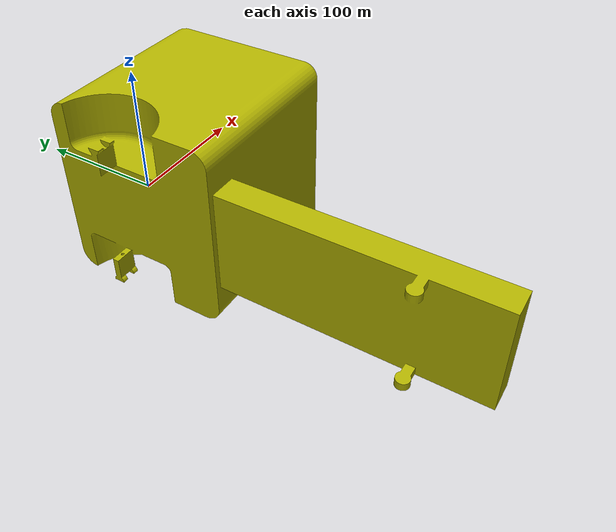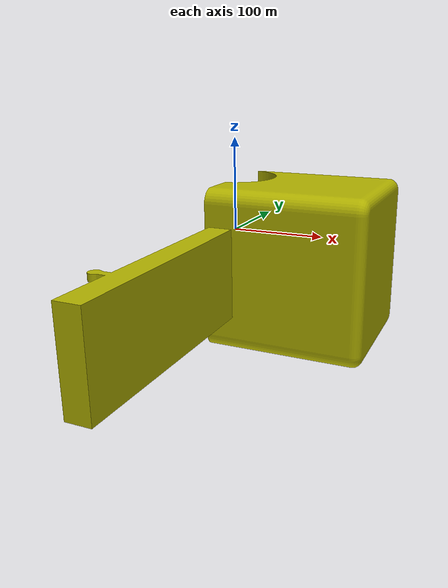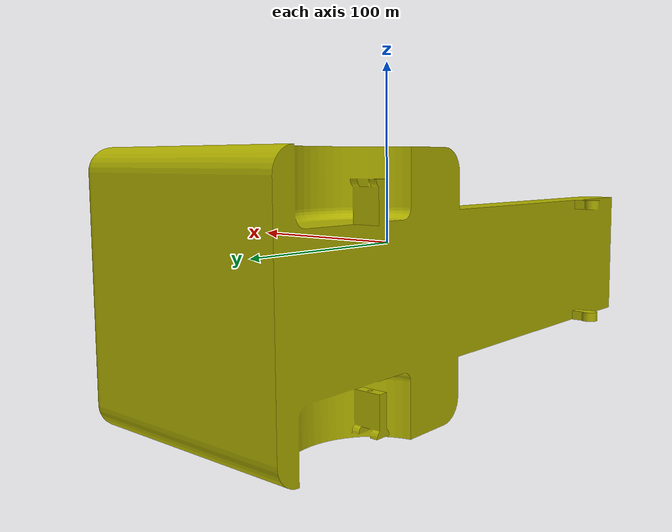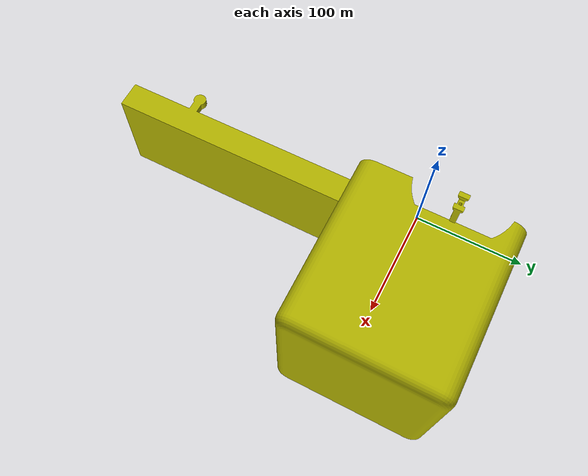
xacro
<?xml version="1.0" encoding="utf-8"?>
<robot name="tamiyabot" xmlns:xacro="http://www.ros.org/wiki/xacro">

    <!-- Load Simulated or Real Hardware Interfaces -->
    <xacro:arg name="is_sim" default="true"/>

    <xacro:include filename="$(find tamiyabot_description)/urdf/tamiyabot_gazebo.xacro"/>
    <xacro:include filename="$(find tamiyabot_description)/urdf/ros2_controller.xacro"/>

  <link name="base_footprint"/>

  <material name="yellow">
    <color rgba="0.700 0.700 0.0 1.000"/>
  </material>

  <material name="black">
    <color rgba="0.0 0.0 0.0 1.000"/>
  </material>

  <link name="base_link">
    <inertial>
      <origin xyz="0.2505 -0.0064254 0.076838" rpy="0 0 0" />
      <mass
        value="0.27374" />
      <inertia ixx="0.00058985" ixy="2.2262E-06" ixz="0.00010607" iyy="0.00098884" iyz="1.6912E-07" izz="0.00082518" />
    </inertial>
    <visual>
      <origin xyz="0.079 0.028 0.011" rpy="1.5708 0 1.5708" />
      <geometry>
        <mesh
          filename="package://tamiyabot_description/meshes/base_link.stl" />
      </geometry>
      <material name="yellow"/>
    </visual>
    <collision>
      <origin xyz="0.079 0.028 0.011" rpy="1.5708 0 1.5708" />
      <geometry>
        <mesh
          filename="package://tamiyabot_description/meshes/base_link.stl" />
      </geometry>
    </collision>
  </link>

  <link
    name="rear_right_wheel">
    <inertial>
      <origin
        xyz="2.01708774683063E-10 0.000117398606297489 -1.65152391762291E-09"
        rpy="0 0 0" />
      <mass
        value="0.0710370465839219" />
      <inertia ixx="3.82546214608002E-05" ixy="-4.23922838047088E-10" ixz="1.87266331655804E-13" iyy="6.79726871995106E-05" iyz="-6.97421289528434E-10" izz="3.82546206479532E-05" />
    </inertial>
    <visual>
      <origin
        xyz="0 0 0"
        rpy="0 0 0" />
      <geometry>
        <mesh
          filename="package://tamiyabot_description/meshes/rear_right_wheel.STL" />
      </geometry>
      <material name="black"/>
    </visual>
    <collision>
      <origin
        xyz="0 0 0"
        rpy="0 0 0" />
      <geometry>
        <mesh
          filename="package://tamiyabot_description/meshes/rear_right_wheel.STL" />
      </geometry>
    </collision>
  </link>
  <joint
    name="rear_right_wheel_joint"
    type="continuous">
    <origin
      xyz="0 -0.0692 0"
      rpy="0 0 0" />
    <parent
      link="base_link" />
    <child
      link="rear_right_wheel" />
    <axis
      xyz="0 -1 0" />
  </joint>
  <link
    name="rear_left_wheel">
    <inertial>
      <origin
        xyz="8.17058115609726E-10 -0.000117398606298336 1.44935755064246E-09"
        rpy="0 0 0" />
      <mass
        value="0.0710370465839065" />
      <inertia ixx="3.82546212100943E-05" ixy="1.25490067842945E-10" ixz="-4.19521205958581E-13" iyy="6.79726871994976E-05" iyz="-8.0644855411232E-10" izz="3.82546208986442E-05" />
    </inertial>
    <visual>
      <origin
        xyz="0 0 0"
        rpy="0 0 0" />
      <geometry>
        <mesh
          filename="package://tamiyabot_description/meshes/rear_left_wheel.STL" />
      </geometry>
      <material name="black"/>
    </visual>
    <collision>
      <origin
        xyz="0 0 0"
        rpy="0 0 0" />
      <geometry>
        <mesh
          filename="package://tamiyabot_description/meshes/rear_left_wheel.STL" />
      </geometry>
    </collision>
  </link>

  <link
    name="front_right_steering">
    <inertial>
      <origin
        xyz="0.00489855721643029 0.000998344223522657 3.03187632014201E-08"
        rpy="0 0 0" />
      <mass
        value="0.00208850370560768" />
      <inertia ixx="5.06505053700476E-08" ixy="-6.86503357532431E-08" ixz="3.87372051902334E-13" iyy="3.11048086284817E-07" iyz="-6.76010683211379E-14" izz="3.34832317084373E-07" />
    </inertial>
    <visual>
      <origin
        xyz="0 0 0"
        rpy="0 0 0" />
      <geometry>
        <mesh
          filename="package://tamiyabot_description/meshes/front_right_steering.STL" />
      </geometry>
      <material name="black"/>
    </visual>
    <collision>
      <origin
        xyz="0 0 0"
        rpy="0 0 0" />
      <geometry>
        <mesh
          filename="package://tamiyabot_description/meshes/front_right_steering.STL" />
      </geometry>
    </collision>
  </link>

  <link
    name="front_right_wheel">
    <inertial>
      <origin
        xyz="9.73985430261781E-05 -0.000439428140629083 -1.67698399647018E-05"
        rpy="0 0 0" />
      <mass
        value="0.0367446346195783" />
      <inertia ixx="1.91701437416466E-05" ixy="4.29347903303383E-15" ixz="-1.46669714610521E-14" iyy="3.39984393334817E-05" iyz="-3.80508250154361E-09" izz="1.91701537552018E-05" />
    </inertial>
    <visual>
      <origin
        xyz="0 0 0"
        rpy="0 0 0" />
      <geometry>
        <mesh
          filename="package://tamiyabot_description/meshes/front_right_wheel.STL" />
      </geometry>
      <material name="black"/>
    </visual>
    <collision>
      <origin
        xyz="0 0 0"
        rpy="0 0 0" />
      <geometry>
        <mesh
          filename="package://tamiyabot_description/meshes/front_right_wheel.STL" />
      </geometry>
    </collision>
  </link>

  <link
    name="front_left_steering">
    <inertial>
      <origin
        xyz="0.00489853403443033 -0.000998329639174483 5.2314660214936E-08"
        rpy="0 0 0" />
      <mass
        value="0.00208850865134204" />
      <inertia ixx="5.06502662014837E-08" ixy="6.8650568785729E-08" ixz="3.48395017585077E-13" iyy="3.11048414461092E-07" iyz="-1.06546424013654E-13" izz="3.3483285484163E-07" />
    </inertial>
    <visual>
      <origin
        xyz="0 0 0"
        rpy="0 0 0" />
      <geometry>
        <mesh
          filename="package://tamiyabot_description/meshes/front_left_steering.STL" />
      </geometry>
      <material name="black"/>
    </visual>
    <collision>
      <origin
        xyz="0 0 0"
        rpy="0 0 0" />
      <geometry>
        <mesh
          filename="package://tamiyabot_description/meshes/front_left_steering.STL" />
      </geometry>
    </collision>
  </link>

  <link
    name="front_left_wheel">
    <inertial>
      <origin
        xyz="-9.75571518577745E-05 0.000450124133235946 -1.67965726766972E-05"
        rpy="0 0 0" />
      <mass
        value="0.0368910311989609" />
      <inertia ixx="1.9171406866921E-05" ixy="-5.22604209282804E-15" ixz="-4.43159667734626E-16" iyy="3.40005203391755E-05" iyz="3.80504395924598E-09" izz="1.91714169504207E-05" />
    </inertial>
    <visual>
      <origin
        xyz="0 0 0"
        rpy="0 0 0" />
      <geometry>
        <mesh
          filename="package://tamiyabot_description/meshes/front_left_wheel.STL" />
      </geometry>
      <material name="black"/>
    </visual>
    <collision>
      <origin
        xyz="0 0 0"
        rpy="0 0 0" />
      <geometry>
        <mesh
          filename="package://tamiyabot_description/meshes/front_left_wheel.STL" />
      </geometry>
    </collision>
  </link>

  <link
    name="camera_link">
    <inertial>
      <origin
        xyz="-5.55111512312578E-17 -1.38777878078145E-17 -1.11022302462516E-16"
        rpy="0 0 0" />
      <mass
        value="0.0279999999999994" />
      <inertia ixx="1.23666666666664E-05" ixy="5.52059313638347E-22" ixz="-3.64224167319349E-20" iyy="1.86666666666659E-06" iyz="-6.71903203302239E-22" izz="1.23666666666664E-05" />
    </inertial>
    <visual>
      <origin
        xyz="0 0 0"
        rpy="0 0 0" />
      <geometry>
        <mesh
          filename="package://tamiyabot_description/meshes/camera_link.STL" />
      </geometry>
      <material name="black"/>
    </visual>
    <collision>
      <origin
        xyz="0 0 0"
        rpy="0 0 0" />
      <geometry>
        <mesh
          filename="package://tamiyabot_description/meshes/camera_link.STL" />
      </geometry>
    </collision>
  </link>

  <!-- Define the joints -->
  <joint name="base_joint" type="fixed">
      <parent link="base_footprint"/>
      <child link="base_link"/>
      <origin xyz="0.0 0.0 0.05" rpy="0.0 0.0 0.0"/>
  </joint>

  <joint name="rear_left_wheel_joint" type="continuous">
    <origin xyz="0 0.0692 0" rpy="0 0 0" />
    <parent link="base_link" />
    <child link="rear_left_wheel" />
    <axis xyz="0 -1 0" />
  </joint>

  <joint name="front_right_steering_joint" type="revolute">
    <origin xyz="0.264 -0.0679999999999999 0" rpy="0 0 0" />
    <parent link="base_link" />
    <child link="front_right_steering" />
    <axis xyz="0 0 1" />
    <limit effort="1000.0" lower="-0.95" upper="0.95" velocity="30"/>
  </joint>

  <joint name="front_left_steering_joint" type="revolute">
    <origin xyz="0.264 0.068 0" rpy="0 0 0" />
    <parent link="base_link" />
    <child link="front_left_steering" />
    <axis xyz="0 0 -1" />
    <limit effort="1000.0" lower="-0.95" upper="0.95" velocity="30"/>
  </joint>

  <joint name="front_right_wheel_joint" type="continuous">
    <origin xyz="0 -0.012115750717685 0" rpy="0 0 0" />
    <parent link="front_right_steering" />
    <child link="front_right_wheel" />
    <axis xyz="0 1 0" />
  </joint>

    <joint name="front_left_wheel_joint" type="continuous">
    <origin xyz="0 0.012115750717685 0" rpy="0 0 0" />
    <parent link="front_left_steering" />
    <child link="front_left_wheel" />
    <axis xyz="0 1 0" />
  </joint>

  <joint name="camera_joint" type="fixed">
    <origin
      xyz="0.296764114866085 0.000110186283262037 0.190046430030239"
      rpy="0 0.174532925199433 0" />
    <parent link="base_link" />
    <child link="camera_link" />
    <axis xyz="0 0 0" />
  </joint>
</robot>
